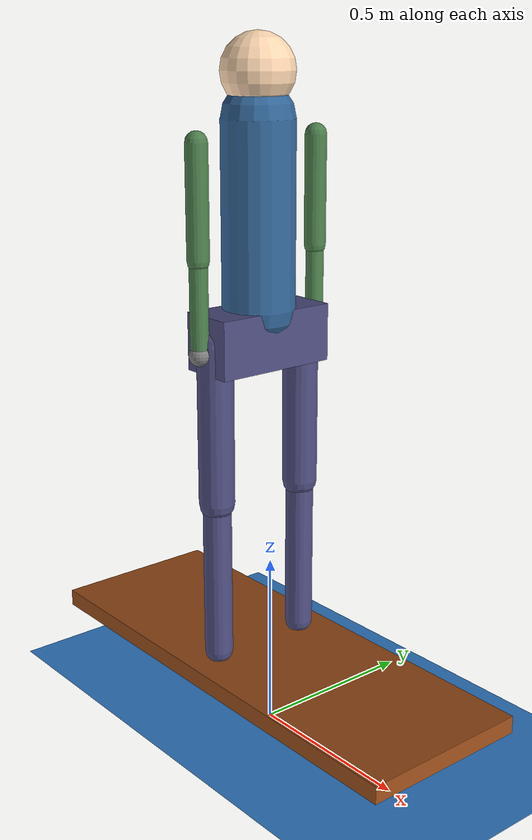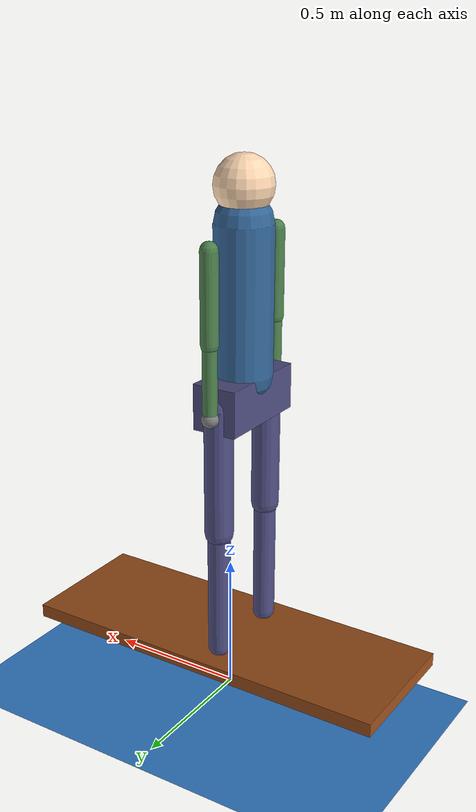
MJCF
<mujoco model="pump_foil_rider">
  <compiler angle="radian" autolimits="true"/>

  <option timestep="0.01" gravity="0 0 -9.81"/>

  <visual>
    <global offwidth="1920" offheight="1080"/>
    <quality shadowsize="2048"/>
  </visual>

  <default>
    <joint damping="50" armature="0.5"/>  <!-- Higher damping for stability -->
    <geom contype="1" conaffinity="1" friction="1 0.5 0.5"/>
    <motor ctrllimited="true" ctrlrange="-1 1"/>
  </default>

  <asset>
    <material name="board" rgba="0.6 0.3 0.1 1"/>
    <material name="skin" rgba="1.0 0.85 0.7 1"/>
    <material name="torso_mat" rgba="0.2 0.4 0.6 1"/>
    <material name="leg" rgba="0.3 0.3 0.5 1"/>
    <material name="arm" rgba="0.3 0.5 0.3 1"/>
    <material name="water" rgba="0.2 0.5 0.8 0.3"/>
  </asset>

  <worldbody>
    <!-- Cameras -->
    <camera name="side" pos="0 5 1" xyaxes="-1 0 0 0 0 1" mode="trackcom"
            target="board"/>
    <camera name="front" pos="5 0 1" xyaxes="0 1 0 0 0 1" mode="trackcom"
            target="board"/>
    <camera name="iso" pos="3 3 2" xyaxes="-0.7 0.7 0 0 0 1" mode="trackcom"
            target="board"/>

    <!-- Water surface (visual only) -->
    <geom name="water_surface" type="plane" pos="0 0 0" size="10 10 0.01"
          material="water" contype="0" conaffinity="0"/>

    <!-- Board with 6DoF freejoint -->
    <body name="board" pos="0 0 0.2">
      <freejoint name="board_joint"/>
      <geom name="board_geom" type="box" size="0.7 0.25 0.025" mass="6"
            material="board" pos="0 0 0"/>
      <site name="mast_base" pos="0 0 -0.025" size="0.02"/>

      <!-- LEFT LEG: shin -> thigh -->
      <body name="left_shin" pos="-0.05 0.15 0.05">
        <!-- Shin: 0.45m, 5kg -->
        <geom name="left_shin_geom" type="capsule" fromto="0 0 0  0 0 0.45"
              size="0.04" mass="5" material="leg"/>

        <!-- Thigh with knee joint -->
        <body name="left_thigh" pos="0 0 0.45">
          <joint name="left_knee" type="hinge" axis="0 1 0" range="0 2.5"/>
          <geom name="left_thigh_geom" type="capsule" fromto="0 0 0  0 0 0.45"
                size="0.05" mass="10" material="leg"/>
        </body>
      </body>

      <!-- RIGHT LEG: shin -> thigh -->
      <body name="right_shin" pos="-0.05 -0.15 0.05">
        <geom name="right_shin_geom" type="capsule" fromto="0 0 0  0 0 0.45"
              size="0.04" mass="5" material="leg"/>

        <body name="right_thigh" pos="0 0 0.45">
          <joint name="right_knee" type="hinge" axis="0 1 0" range="0 2.5"/>
          <geom name="right_thigh_geom" type="capsule" fromto="0 0 0  0 0 0.45"
                size="0.05" mass="10" material="leg"/>
        </body>
      </body>

      <!-- PELVIS - connects both legs to torso -->
      <!-- Located at hip height: 0.05 (foot) + 0.45 (shin) + 0.45 (thigh) = 0.95m -->
      <body name="pelvis" pos="-0.05 0 0.95">
        <!-- Hip joints - control the thighs from here -->
        <joint name="left_hip" type="hinge" axis="0 1 0" range="-0.5 1.5"/>
        <joint name="right_hip" type="hinge" axis="0 1 0" range="-0.5 1.5"/>

        <!-- Pelvis geometry (small, mainly a connector) -->
        <geom name="pelvis_geom" type="box" size="0.08 0.18 0.08" mass="5"
              material="leg"/>

        <!-- TORSO with waist joint -->
        <body name="torso" pos="0 0 0.08">
          <joint name="waist" type="hinge" axis="0 1 0" range="-0.3 0.5"/>

          <!-- Torso: 0.50m, 30kg (reduced since pelvis now has 5kg) -->
          <geom name="torso_geom" type="capsule" fromto="0 0 0  0 0 0.50"
                size="0.10" mass="30" material="torso_mat"/>

          <!-- SHOULDERS AND HEAD -->
          <body name="shoulders" pos="0 0 0.45">
            <!-- Head -->
            <body name="head" pos="0 0 0.17">
              <geom name="head_geom" type="sphere" size="0.10"
                    mass="5" material="skin"/>
            </body>

            <!-- LEFT ARM -->
            <body name="left_upper_arm" pos="0 0.20 0">
              <joint name="left_shoulder" type="hinge" axis="0 1 0" range="-1.0 2.5"/>
              <!-- Upper arm: 0.30m, 3kg - hangs down -->
              <geom name="left_upper_arm_geom" type="capsule"
                    fromto="0 0 0  0 0 -0.30" size="0.03" mass="3" material="arm"/>

              <body name="left_forearm" pos="0 0 -0.30">
                <joint name="left_elbow" type="hinge" axis="0 1 0" range="0 2.5"/>
                <!-- Forearm: 0.25m, 2kg -->
                <geom name="left_forearm_geom" type="capsule"
                      fromto="0 0 0  0 0 -0.25" size="0.025" mass="2" material="arm"/>
                <site name="left_hand" pos="0 0 -0.25" size="0.03"/>
              </body>
            </body>

            <!-- RIGHT ARM -->
            <body name="right_upper_arm" pos="0 -0.20 0">
              <joint name="right_shoulder" type="hinge" axis="0 1 0" range="-1.0 2.5"/>
              <geom name="right_upper_arm_geom" type="capsule"
                    fromto="0 0 0  0 0 -0.30" size="0.03" mass="3" material="arm"/>

              <body name="right_forearm" pos="0 0 -0.30">
                <joint name="right_elbow" type="hinge" axis="0 1 0" range="0 2.5"/>
                <geom name="right_forearm_geom" type="capsule"
                      fromto="0 0 0  0 0 -0.25" size="0.025" mass="2" material="arm"/>
                <site name="right_hand" pos="0 0 -0.25" size="0.03"/>
              </body>
            </body>
          </body>
        </body>
      </body>
    </body>
  </worldbody>

  <!-- Actuators -->
  <actuator>
    <!-- Leg actuators - main pumping motion -->
    <motor name="left_knee_motor" joint="left_knee" gear="150"/>
    <motor name="right_knee_motor" joint="right_knee" gear="150"/>
    <motor name="left_hip_motor" joint="left_hip" gear="200"/>
    <motor name="right_hip_motor" joint="right_hip" gear="200"/>

    <!-- Waist actuator -->
    <motor name="waist_motor" joint="waist" gear="250"/>

    <!-- Arm actuators -->
    <motor name="left_shoulder_motor" joint="left_shoulder" gear="50"/>
    <motor name="right_shoulder_motor" joint="right_shoulder" gear="50"/>
    <motor name="left_elbow_motor" joint="left_elbow" gear="30"/>
    <motor name="right_elbow_motor" joint="right_elbow" gear="30"/>
  </actuator>

  <!-- Sensors -->
  <sensor>
    <!-- Board state -->
    <framepos name="board_pos" objtype="body" objname="board"/>
    <framequat name="board_quat" objtype="body" objname="board"/>
    <framelinvel name="board_vel" objtype="body" objname="board"/>
    <frameangvel name="board_angvel" objtype="body" objname="board"/>

    <!-- Joint positions -->
    <jointpos name="left_knee_pos" joint="left_knee"/>
    <jointpos name="right_knee_pos" joint="right_knee"/>
    <jointpos name="left_hip_pos" joint="left_hip"/>
    <jointpos name="right_hip_pos" joint="right_hip"/>
    <jointpos name="waist_pos" joint="waist"/>
    <jointpos name="left_shoulder_pos" joint="left_shoulder"/>
    <jointpos name="right_shoulder_pos" joint="right_shoulder"/>

    <!-- Center of mass of rider (pelvis subtree) -->
    <subtreecom name="rider_com" body="pelvis"/>
  </sensor>
</mujoco>
